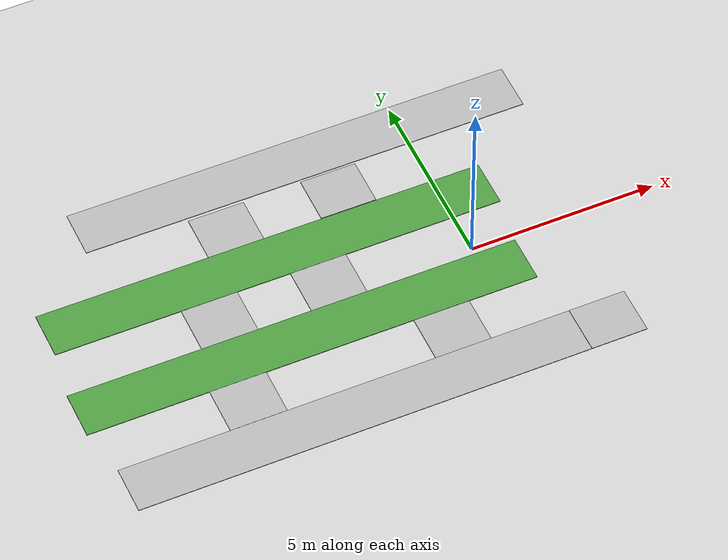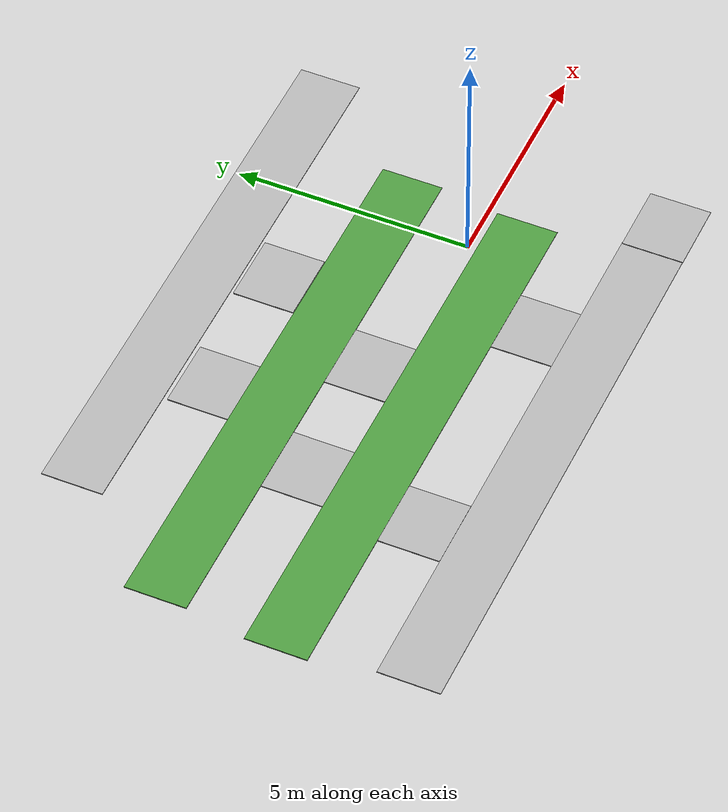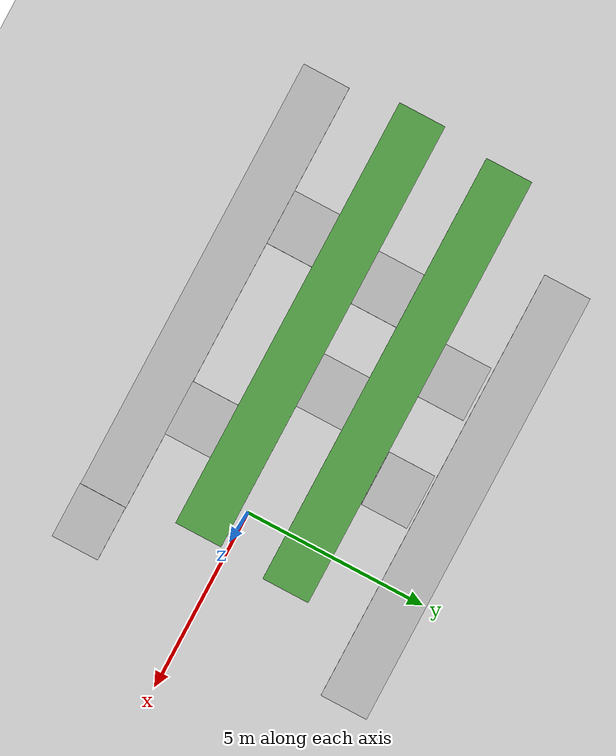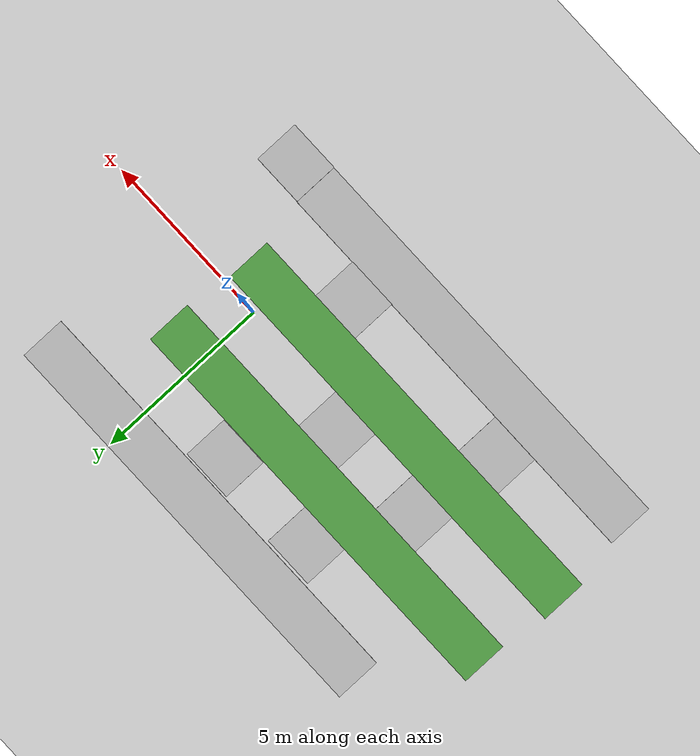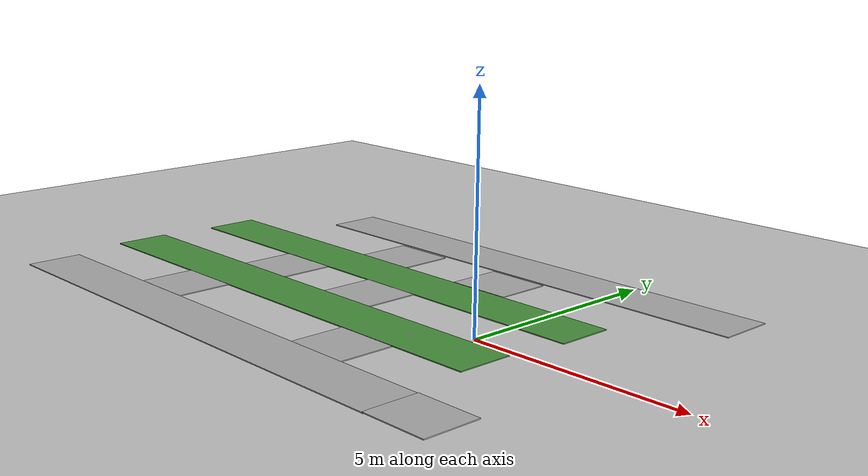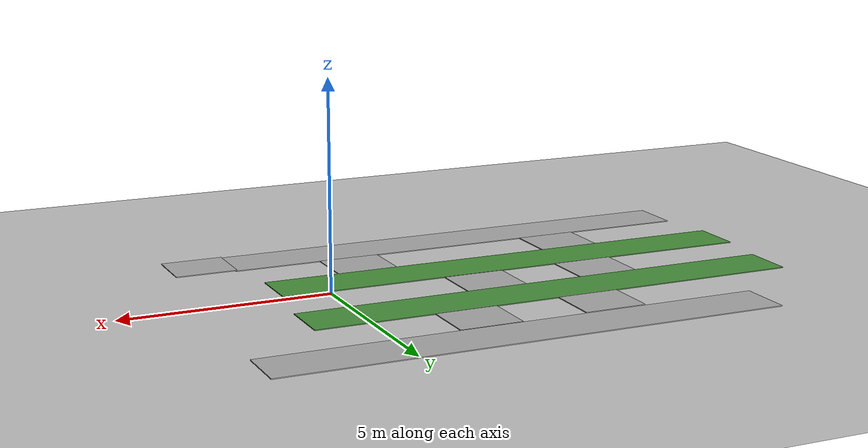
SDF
<sdf version="1.7">
 <world name="default">
  <light name="sun" type="directional">
   <pose>0 0 10 0 -0 0</pose>
   <diffuse>0.8 0.8 0.8 1</diffuse>
   <specular>0.2 0.2 0.2 1</specular>
   <attenuation>
    <range>1000</range>
    <constant>0.9</constant>
    <linear>0.01</linear>
    <quadratic>0.001</quadratic>
   </attenuation>
   <direction>-0.5 0.1 -0.9</direction>
   <spot><inner_angle>0</inner_angle><outer_angle>0</outer_angle><falloff>0</falloff></spot>
  </light>
  <model name="ground_plane">
   <static>1</static>
   <link name="link">
    <collision name="collision">
     <geometry><plane><normal>0 0 1</normal><size>100 100</size></plane></geometry>
     <surface>
      <contact><collide_bitmask>65535</collide_bitmask></contact>
      <friction><ode><mu>100</mu><mu2>50</mu2></ode></friction>
     </surface>
    </collision>
    <visual name="visual">
     <cast_shadows>0</cast_shadows>
     <geometry><plane><normal>0 0 1</normal><size>100 100</size></plane></geometry>
     <material>
      <script><uri>file://media/materials/scripts/gazebo.material</uri><name>Gazebo/Grey</name></script>
     </material>
    </visual>
   </link>
  </model>
  <gravity>0 0 -9.8</gravity>
  <magnetic_field>6e-06 2.3e-05 -4.2e-05</magnetic_field>
  <atmosphere type="adiabatic"/>
  <physics type="ode">
   <max_step_size>0.001</max_step_size>
   <real_time_factor>1</real_time_factor>
   <real_time_update_rate>1000</real_time_update_rate>
  </physics>
  <scene><ambient>0.4 0.4 0.4 1</ambient><background>0.7 0.7 0.7 1</background><shadows>1</shadows></scene>
  <spherical_coordinates>
   <surface_model>EARTH_WGS84</surface_model>
   <latitude_deg>0</latitude_deg>
   <longitude_deg>0</longitude_deg>
   <elevation>0</elevation>
   <heading_deg>0</heading_deg>
  </spherical_coordinates>
  <model name="rigid_surface">
   <link name="link">
    <inertial>
     <mass>1</mass>
     <inertia>
      <ixx>0.166667</ixx>
      <ixy>0</ixy>
      <ixz>0</ixz>
      <iyy>0.166667</iyy>
      <iyz>0</iyz>
      <izz>0.166667</izz>
     </inertia>
    </inertial>
    <visual name="visual">
     <geometry><box><size>1.5 1.3 0.02</size></box></geometry>
     <material>
      <script><name>Gazebo/CoM</name><uri>file://media/materials/scripts/gazebo.material</uri></script>
      <shader type="pixel"><normal_map>__default__</normal_map></shader>
      <ambient>0.3 0.3 0.3 1</ambient>
      <diffuse>0.7 0.7 0.7 1</diffuse>
      <specular>0.01 0.01 0.01 1</specular>
      <emissive>0 0 0 1</emissive>
     </material>
    </visual>
    <collision name="collision">
     <geometry><box><size>1.5 1.3 0.02</size></box></geometry>
     <surface>
      <friction>
       <ode><mu>1</mu><mu2>1</mu2><fdir1>0 0 0</fdir1><slip1>0</slip1><slip2>0</slip2></ode>
       <torsional>
        <coefficient>1</coefficient>
        <patch_radius>0</patch_radius>
        <surface_radius>0</surface_radius>
        <use_patch_radius>1</use_patch_radius>
        <ode><slip>0</slip></ode>
       </torsional>
      </friction>
      <bounce><restitution_coefficient>0</restitution_coefficient><threshold>1e+06</threshold></bounce>
      <contact>
       <collide_without_contact>0</collide_without_contact>
       <collide_without_contact_bitmask>1</collide_without_contact_bitmask>
       <collide_bitmask>1</collide_bitmask>
       <ode>
        <soft_cfm>0</soft_cfm>
        <soft_erp>0.2</soft_erp>
        <kp>1e+13</kp>
        <kd>1</kd>
        <max_vel>0.01</max_vel>
        <min_depth>0</min_depth>
       </ode>
       <bullet>
        <split_impulse>1</split_impulse>
        <split_impulse_penetration_threshold>-0.01</split_impulse_penetration_threshold>
        <soft_cfm>0</soft_cfm>
        <soft_erp>0.2</soft_erp>
        <kp>1e+13</kp>
        <kd>1</kd>
       </bullet>
      </contact>
     </surface>
    </collision>
   </link>
   <static>1</static>
   <pose>2.09076 -3.42533 0.016356 0 1e-05 0</pose>
  </model>
  <model name="rigid_surface_0">
   <link name="link">
    <inertial>
     <mass>1</mass>
     <inertia>
      <ixx>0.166667</ixx>
      <ixy>0</ixy>
      <ixz>0</ixz>
      <iyy>0.166667</iyy>
      <iyz>0</iyz>
      <izz>0.166667</izz>
     </inertia>
    </inertial>
    <visual name="visual">
     <geometry><box><size>1.5 1.3 0.02</size></box></geometry>
     <material>
      <script><name>Gazebo/CoM</name><uri>file://media/materials/scripts/gazebo.material</uri></script>
      <shader type="pixel"><normal_map>__default__</normal_map></shader>
      <ambient>0.3 0.3 0.3 1</ambient>
      <diffuse>0.7 0.7 0.7 1</diffuse>
      <specular>0.01 0.01 0.01 1</specular>
      <emissive>0 0 0 1</emissive>
     </material>
    </visual>
    <collision name="collision">
     <geometry><box><size>1.5 1.3 0.02</size></box></geometry>
     <surface>
      <friction>
       <ode><mu>1</mu><mu2>1</mu2><fdir1>0 0 0</fdir1><slip1>0</slip1><slip2>0</slip2></ode>
       <torsional>
        <coefficient>1</coefficient>
        <patch_radius>0</patch_radius>
        <surface_radius>0</surface_radius>
        <use_patch_radius>1</use_patch_radius>
        <ode><slip>0</slip></ode>
       </torsional>
      </friction>
      <bounce><restitution_coefficient>0</restitution_coefficient><threshold>1e+06</threshold></bounce>
      <contact>
       <collide_without_contact>0</collide_without_contact>
       <collide_without_contact_bitmask>1</collide_without_contact_bitmask>
       <collide_bitmask>1</collide_bitmask>
       <ode>
        <soft_cfm>0</soft_cfm>
        <soft_erp>0.2</soft_erp>
        <kp>1e+13</kp>
        <kd>1</kd>
        <max_vel>0.01</max_vel>
        <min_depth>0</min_depth>
       </ode>
       <bullet>
        <split_impulse>1</split_impulse>
        <split_impulse_penetration_threshold>-0.01</split_impulse_penetration_threshold>
        <soft_cfm>0</soft_cfm>
        <soft_erp>0.2</soft_erp>
        <kp>1e+13</kp>
        <kd>1</kd>
       </bullet>
      </contact>
     </surface>
    </collision>
   </link>
   <static>1</static>
   <pose>-6.95943 -2.11349 0 0 -0 0</pose>
  </model>
  <model name="rigid_surface_1">
   <link name="link">
    <inertial>
     <mass>1</mass>
     <inertia>
      <ixx>0.166667</ixx>
      <ixy>0</ixy>
      <ixz>0</ixz>
      <iyy>0.166667</iyy>
      <iyz>0</iyz>
      <izz>0.166667</izz>
     </inertia>
    </inertial>
    <visual name="visual">
     <geometry><box><size>1.5 1.3 0.02</size></box></geometry>
     <material>
      <script><name>Gazebo/CoM</name><uri>file://media/materials/scripts/gazebo.material</uri></script>
      <shader type="pixel"><normal_map>__default__</normal_map></shader>
      <ambient>0.3 0.3 0.3 1</ambient>
      <diffuse>0.7 0.7 0.7 1</diffuse>
      <specular>0.01 0.01 0.01 1</specular>
      <emissive>0 0 0 1</emissive>
     </material>
    </visual>
    <collision name="collision">
     <geometry><box><size>1.5 1.3 0.02</size></box></geometry>
     <surface>
      <friction>
       <ode><mu>1</mu><mu2>1</mu2><fdir1>0 0 0</fdir1><slip1>0</slip1><slip2>0</slip2></ode>
       <torsional>
        <coefficient>1</coefficient>
        <patch_radius>0</patch_radius>
        <surface_radius>0</surface_radius>
        <use_patch_radius>1</use_patch_radius>
        <ode><slip>0</slip></ode>
       </torsional>
      </friction>
      <bounce><restitution_coefficient>0</restitution_coefficient><threshold>1e+06</threshold></bounce>
      <contact>
       <collide_without_contact>0</collide_without_contact>
       <collide_without_contact_bitmask>1</collide_without_contact_bitmask>
       <collide_bitmask>1</collide_bitmask>
       <ode>
        <soft_cfm>0</soft_cfm>
        <soft_erp>0.2</soft_erp>
        <kp>1e+13</kp>
        <kd>1</kd>
        <max_vel>0.01</max_vel>
        <min_depth>0</min_depth>
       </ode>
       <bullet>
        <split_impulse>1</split_impulse>
        <split_impulse_penetration_threshold>-0.01</split_impulse_penetration_threshold>
        <soft_cfm>0</soft_cfm>
        <soft_erp>0.2</soft_erp>
        <kp>1e+13</kp>
        <kd>1</kd>
       </bullet>
      </contact>
     </surface>
    </collision>
   </link>
   <static>1</static>
   <pose>-1.51533 -2.12704 0 0 -0 0</pose>
  </model>
  <model name="rigid_surface_2">
   <link name="link">
    <inertial>
     <mass>1</mass>
     <inertia>
      <ixx>0.166667</ixx>
      <ixy>0</ixy>
      <ixz>0</ixz>
      <iyy>0.166667</iyy>
      <iyz>0</iyz>
      <izz>0.166667</izz>
     </inertia>
    </inertial>
    <visual name="visual">
     <geometry><box><size>1.5 1.3 0.02</size></box></geometry>
     <material>
      <script><name>Gazebo/CoM</name><uri>file://media/materials/scripts/gazebo.material</uri></script>
      <shader type="pixel"><normal_map>__default__</normal_map></shader>
      <ambient>0.3 0.3 0.3 1</ambient>
      <diffuse>0.7 0.7 0.7 1</diffuse>
      <specular>0.01 0.01 0.01 1</specular>
      <emissive>0 0 0 1</emissive>
     </material>
    </visual>
    <collision name="collision">
     <geometry><box><size>1.5 1.3 0.02</size></box></geometry>
     <surface>
      <friction>
       <ode><mu>1</mu><mu2>1</mu2><fdir1>0 0 0</fdir1><slip1>0</slip1><slip2>0</slip2></ode>
       <torsional>
        <coefficient>1</coefficient>
        <patch_radius>0</patch_radius>
        <surface_radius>0</surface_radius>
        <use_patch_radius>1</use_patch_radius>
        <ode><slip>0</slip></ode>
       </torsional>
      </friction>
      <bounce><restitution_coefficient>0</restitution_coefficient><threshold>1e+06</threshold></bounce>
      <contact>
       <collide_without_contact>0</collide_without_contact>
       <collide_without_contact_bitmask>1</collide_without_contact_bitmask>
       <collide_bitmask>1</collide_bitmask>
       <ode>
        <soft_cfm>0</soft_cfm>
        <soft_erp>0.2</soft_erp>
        <kp>1e+13</kp>
        <kd>1</kd>
        <max_vel>0.01</max_vel>
        <min_depth>0</min_depth>
       </ode>
       <bullet>
        <split_impulse>1</split_impulse>
        <split_impulse_penetration_threshold>-0.01</split_impulse_penetration_threshold>
        <soft_cfm>0</soft_cfm>
        <soft_erp>0.2</soft_erp>
        <kp>1e+13</kp>
        <kd>1</kd>
       </bullet>
      </contact>
     </surface>
    </collision>
   </link>
   <static>1</static>
   <pose>-3.68471 0.469303 0 0 -0 0</pose>
  </model>
  <model name="rigid_surface_3">
   <link name="link">
    <inertial>
     <mass>1</mass>
     <inertia>
      <ixx>0.166667</ixx>
      <ixy>0</ixy>
      <ixz>0</ixz>
      <iyy>0.166667</iyy>
      <iyz>0</iyz>
      <izz>0.166667</izz>
     </inertia>
    </inertial>
    <visual name="visual">
     <geometry><box><size>1.5 1.3 0.02</size></box></geometry>
     <material>
      <script><name>Gazebo/CoM</name><uri>file://media/materials/scripts/gazebo.material</uri></script>
      <shader type="pixel"><normal_map>__default__</normal_map></shader>
      <ambient>0.3 0.3 0.3 1</ambient>
      <diffuse>0.7 0.7 0.7 1</diffuse>
      <specular>0.01 0.01 0.01 1</specular>
      <emissive>0 0 0 1</emissive>
     </material>
    </visual>
    <collision name="collision">
     <geometry><box><size>1.5 1.3 0.02</size></box></geometry>
     <surface>
      <friction>
       <ode><mu>1</mu><mu2>1</mu2><fdir1>0 0 0</fdir1><slip1>0</slip1><slip2>0</slip2></ode>
       <torsional>
        <coefficient>1</coefficient>
        <patch_radius>0</patch_radius>
        <surface_radius>0</surface_radius>
        <use_patch_radius>1</use_patch_radius>
        <ode><slip>0</slip></ode>
       </torsional>
      </friction>
      <bounce><restitution_coefficient>0</restitution_coefficient><threshold>1e+06</threshold></bounce>
      <contact>
       <collide_without_contact>0</collide_without_contact>
       <collide_without_contact_bitmask>1</collide_without_contact_bitmask>
       <collide_bitmask>1</collide_bitmask>
       <ode>
        <soft_cfm>0</soft_cfm>
        <soft_erp>0.2</soft_erp>
        <kp>1e+13</kp>
        <kd>1</kd>
        <max_vel>0.01</max_vel>
        <min_depth>0</min_depth>
       </ode>
       <bullet>
        <split_impulse>1</split_impulse>
        <split_impulse_penetration_threshold>-0.01</split_impulse_penetration_threshold>
        <soft_cfm>0</soft_cfm>
        <soft_erp>0.2</soft_erp>
        <kp>1e+13</kp>
        <kd>1</kd>
       </bullet>
      </contact>
     </surface>
    </collision>
   </link>
   <static>1</static>
   <pose>-6.61521 0.463482 0 0 -0 0</pose>
  </model>
  <model name="rigid_surface_4">
   <link name="link">
    <inertial>
     <mass>1</mass>
     <inertia>
      <ixx>0.166667</ixx>
      <ixy>0</ixy>
      <ixz>0</ixz>
      <iyy>0.166667</iyy>
      <iyz>0</iyz>
      <izz>0.166667</izz>
     </inertia>
    </inertial>
    <visual name="visual">
     <geometry><box><size>1.5 1.3 0.02</size></box></geometry>
     <material>
      <script><name>Gazebo/CoM</name><uri>file://media/materials/scripts/gazebo.material</uri></script>
      <shader type="pixel"><normal_map>__default__</normal_map></shader>
      <ambient>0.3 0.3 0.3 1</ambient>
      <diffuse>0.7 0.7 0.7 1</diffuse>
      <specular>0.01 0.01 0.01 1</specular>
      <emissive>0 0 0 1</emissive>
     </material>
    </visual>
    <collision name="collision">
     <geometry><box><size>1.5 1.3 0.02</size></box></geometry>
     <surface>
      <friction>
       <ode><mu>1</mu><mu2>1</mu2><fdir1>0 0 0</fdir1><slip1>0</slip1><slip2>0</slip2></ode>
       <torsional>
        <coefficient>1</coefficient>
        <patch_radius>0</patch_radius>
        <surface_radius>0</surface_radius>
        <use_patch_radius>1</use_patch_radius>
        <ode><slip>0</slip></ode>
       </torsional>
      </friction>
      <bounce><restitution_coefficient>0</restitution_coefficient><threshold>1e+06</threshold></bounce>
      <contact>
       <collide_without_contact>0</collide_without_contact>
       <collide_without_contact_bitmask>1</collide_without_contact_bitmask>
       <collide_bitmask>1</collide_bitmask>
       <ode>
        <soft_cfm>0</soft_cfm>
        <soft_erp>0.2</soft_erp>
        <kp>1e+13</kp>
        <kd>1</kd>
        <max_vel>0.01</max_vel>
        <min_depth>0</min_depth>
       </ode>
       <bullet>
        <split_impulse>1</split_impulse>
        <split_impulse_penetration_threshold>-0.01</split_impulse_penetration_threshold>
        <soft_cfm>0</soft_cfm>
        <soft_erp>0.2</soft_erp>
        <kp>1e+13</kp>
        <kd>1</kd>
       </bullet>
      </contact>
     </surface>
    </collision>
   </link>
   <static>1</static>
   <pose>-5.33596 3.05973 0 0 -0 0</pose>
  </model>
  <model name="rigid_surface_5">
   <link name="link">
    <inertial>
     <mass>1</mass>
     <inertia>
      <ixx>0.166667</ixx>
      <ixy>0</ixy>
      <ixz>0</ixz>
      <iyy>0.166667</iyy>
      <iyz>0</iyz>
      <izz>0.166667</izz>
     </inertia>
    </inertial>
    <visual name="visual">
     <geometry><box><size>1.5 1.3 0.02</size></box></geometry>
     <material>
      <script><name>Gazebo/CoM</name><uri>file://media/materials/scripts/gazebo.material</uri></script>
      <shader type="pixel"><normal_map>__default__</normal_map></shader>
      <ambient>0.3 0.3 0.3 1</ambient>
      <diffuse>0.7 0.7 0.7 1</diffuse>
      <specular>0.01 0.01 0.01 1</specular>
      <emissive>0 0 0 1</emissive>
     </material>
    </visual>
    <collision name="collision">
     <geometry><box><size>1.5 1.3 0.02</size></box></geometry>
     <surface>
      <friction>
       <ode><mu>1</mu><mu2>1</mu2><fdir1>0 0 0</fdir1><slip1>0</slip1><slip2>0</slip2></ode>
       <torsional>
        <coefficient>1</coefficient>
        <patch_radius>0</patch_radius>
        <surface_radius>0</surface_radius>
        <use_patch_radius>1</use_patch_radius>
        <ode><slip>0</slip></ode>
       </torsional>
      </friction>
      <bounce><restitution_coefficient>0</restitution_coefficient><threshold>1e+06</threshold></bounce>
      <contact>
       <collide_without_contact>0</collide_without_contact>
       <collide_without_contact_bitmask>1</collide_without_contact_bitmask>
       <collide_bitmask>1</collide_bitmask>
       <ode>
        <soft_cfm>0</soft_cfm>
        <soft_erp>0.2</soft_erp>
        <kp>1e+13</kp>
        <kd>1</kd>
        <max_vel>0.01</max_vel>
        <min_depth>0</min_depth>
       </ode>
       <bullet>
        <split_impulse>1</split_impulse>
        <split_impulse_penetration_threshold>-0.01</split_impulse_penetration_threshold>
        <soft_cfm>0</soft_cfm>
        <soft_erp>0.2</soft_erp>
        <kp>1e+13</kp>
        <kd>1</kd>
       </bullet>
      </contact>
     </surface>
    </collision>
   </link>
   <static>1</static>
   <pose>-2.26883 3.08034 0 0 -0 0</pose>
  </model>
  <model name="testConcrete">
   <link name="link_0">
    <inertial>
     <mass>1</mass>
     <inertia>
      <ixx>0.166667</ixx>
      <ixy>0</ixy>
      <ixz>0</ixz>
      <iyy>0.166667</iyy>
      <iyz>0</iyz>
      <izz>0.166667</izz>
     </inertia>
    </inertial>
    <visual name="visual">
     <geometry><box><size>12 1.3 0.02</size></box></geometry>
     <material>
      <lighting>1</lighting>
      <script><uri>file://media/materials/scripts/gazebo.material</uri><name>Gazebo/Motorway</name></script>
      <shader type="pixel"><normal_map>__default__</normal_map></shader>
      <ambient>0.3 0.3 0.3 1</ambient>
      <diffuse>0.7 0.7 0.7 1</diffuse>
      <specular>0.01 0.01 0.01 1</specular>
      <emissive>0 0 0 1</emissive>
     </material>
    </visual>
    <collision name="collision">
     <geometry><box><size>12 1.3 0.02</size></box></geometry>
     <surface>
      <friction>
       <ode><mu>1</mu><mu2>1</mu2><fdir1>0 0 0</fdir1><slip1>0</slip1><slip2>0</slip2></ode>
       <torsional>
        <coefficient>1</coefficient>
        <patch_radius>0</patch_radius>
        <surface_radius>0</surface_radius>
        <use_patch_radius>1</use_patch_radius>
        <ode><slip>0</slip></ode>
       </torsional>
      </friction>
      <bounce><restitution_coefficient>0</restitution_coefficient><threshold>1e+06</threshold></bounce>
      <contact>
       <collide_without_contact>0</collide_without_contact>
       <collide_without_contact_bitmask>1</collide_without_contact_bitmask>
       <collide_bitmask>1</collide_bitmask>
       <ode>
        <soft_cfm>0</soft_cfm>
        <soft_erp>0.2</soft_erp>
        <kp>3.4e+09</kp>
        <kd>180000</kd>
        <max_vel>0.01</max_vel>
        <min_depth>0</min_depth>
       </ode>
       <bullet>
        <split_impulse>1</split_impulse>
        <split_impulse_penetration_threshold>-0.01</split_impulse_penetration_threshold>
        <soft_cfm>0</soft_cfm>
        <soft_erp>0.2</soft_erp>
        <kp>3.4e+09</kp>
        <kd>180000</kd>
       </bullet>
      </contact>
     </surface>
    </collision>
   </link>
   <static>1</static>
   <pose>-2.79488 4.4395 0.009994 2.2e-05 0 1.2e-05</pose>
  </model>
  <model name="sandTerrain">
   <link name="link_0">
    <inertial>
     <mass>1</mass>
     <inertia>
      <ixx>0.166667</ixx>
      <ixy>0</ixy>
      <ixz>0</ixz>
      <iyy>0.166667</iyy>
      <iyz>0</iyz>
      <izz>0.166667</izz>
     </inertia>
    </inertial>
    <visual name="visual">
     <geometry><box><size>12 1.3 0.02</size></box></geometry>
     <material>
      <lighting>1</lighting>
      <script><uri>file://media/materials/scripts/gazebo.material</uri><name>Gazebo/Grass</name></script>
      <shader type="pixel"><normal_map>__default__</normal_map></shader>
      <ambient>0.3 0.3 0.3 1</ambient>
      <diffuse>0.7 0.7 0.7 1</diffuse>
      <specular>0.01 0.01 0.01 1</specular>
      <emissive>0 0 0 1</emissive>
     </material>
    </visual>
    <collision name="collision">
     <geometry><box><size>12 1.3 0.02</size></box></geometry>
     <surface>
      <friction>
       <ode><mu>1</mu><mu2>1</mu2><fdir1>0 0 0</fdir1><slip1>0</slip1><slip2>0</slip2></ode>
       <torsional>
        <coefficient>1</coefficient>
        <patch_radius>0</patch_radius>
        <surface_radius>0</surface_radius>
        <use_patch_radius>1</use_patch_radius>
        <ode><slip>0</slip></ode>
       </torsional>
      </friction>
      <bounce><restitution_coefficient>0</restitution_coefficient><threshold>1e+06</threshold></bounce>
      <contact>
       <collide_without_contact>0</collide_without_contact>
       <collide_without_contact_bitmask>1</collide_without_contact_bitmask>
       <collide_bitmask>1</collide_bitmask>
       <ode>
        <soft_cfm>0</soft_cfm>
        <soft_erp>0.2</soft_erp>
        <kp>9.1e+06</kp>
        <kd>9000</kd>
        <max_vel>0.01</max_vel>
        <min_depth>0</min_depth>
       </ode>
       <bullet>
        <split_impulse>1</split_impulse>
        <split_impulse_penetration_threshold>-0.01</split_impulse_penetration_threshold>
        <soft_cfm>0</soft_cfm>
        <soft_erp>0.2</soft_erp>
        <kp>9.1e+06</kp>
        <kd>9000</kd>
       </bullet>
      </contact>
     </surface>
    </collision>
   </link>
   <static>1</static>
   <pose>-4.91009 -0.830343 0.004479 -0.00047 -0.000966 -0.000678</pose>
  </model>
  <model name="sandTerrain_0">
   <link name="link_0">
    <inertial>
     <mass>1</mass>
     <inertia>
      <ixx>0.166667</ixx>
      <ixy>0</ixy>
      <ixz>0</ixz>
      <iyy>0.166667</iyy>
      <iyz>0</iyz>
      <izz>0.166667</izz>
     </inertia>
    </inertial>
    <visual name="visual">
     <geometry><box><size>12 1.3 0.02</size></box></geometry>
     <material>
      <lighting>1</lighting>
      <script><uri>file://media/materials/scripts/gazebo.material</uri><name>Gazebo/Grass</name></script>
      <shader type="pixel"><normal_map>__default__</normal_map></shader>
      <ambient>0.3 0.3 0.3 1</ambient>
      <diffuse>0.7 0.7 0.7 1</diffuse>
      <specular>0.01 0.01 0.01 1</specular>
      <emissive>0 0 0 1</emissive>
     </material>
    </visual>
    <collision name="collision">
     <geometry><box><size>12 1.3 0.02</size></box></geometry>
     <surface>
      <friction>
       <ode><mu>1</mu><mu2>1</mu2><fdir1>0 0 0</fdir1><slip1>0</slip1><slip2>0</slip2></ode>
       <torsional>
        <coefficient>1</coefficient>
        <patch_radius>0</patch_radius>
        <surface_radius>0</surface_radius>
        <use_patch_radius>1</use_patch_radius>
        <ode><slip>0</slip></ode>
       </torsional>
      </friction>
      <bounce><restitution_coefficient>0</restitution_coefficient><threshold>1e+06</threshold></bounce>
      <contact>
       <collide_without_contact>0</collide_without_contact>
       <collide_without_contact_bitmask>1</collide_without_contact_bitmask>
       <collide_bitmask>1</collide_bitmask>
       <ode>
        <soft_cfm>0</soft_cfm>
        <soft_erp>0.2</soft_erp>
        <kp>9.1e+06</kp>
        <kd>9000</kd>
        <max_vel>0.01</max_vel>
        <min_depth>0</min_depth>
       </ode>
       <bullet>
        <split_impulse>1</split_impulse>
        <split_impulse_penetration_threshold>-0.01</split_impulse_penetration_threshold>
        <soft_cfm>0</soft_cfm>
        <soft_erp>0.2</soft_erp>
        <kp>9.1e+06</kp>
        <kd>9000</kd>
       </bullet>
      </contact>
     </surface>
    </collision>
   </link>
   <static>1</static>
   <pose>-4.69792 1.76471 0.002092 -0.002438 0.00134 0.000114</pose>
  </model>
  <model name="gravelTerrain">
   <link name="link_0">
    <inertial>
     <mass>1</mass>
     <inertia>
      <ixx>0.166667</ixx>
      <ixy>0</ixy>
      <ixz>0</ixz>
      <iyy>0.166667</iyy>
      <iyz>0</iyz>
      <izz>0.166667</izz>
     </inertia>
    </inertial>
    <visual name="visual">
     <geometry><box><size>12 1.3 0.02</size></box></geometry>
     <material>
      <lighting>1</lighting>
      <script><uri>file://media/materials/scripts/gazebo.material</uri><name>Gazebo/Footway</name></script>
      <shader type="pixel"><normal_map>__default__</normal_map></shader>
      <ambient>0.3 0.3 0.3 1</ambient>
      <diffuse>0.7 0.7 0.7 1</diffuse>
      <specular>0.01 0.01 0.01 1</specular>
      <emissive>0 0 0 1</emissive>
     </material>
    </visual>
    <collision name="collision">
     <geometry><box><size>12 1.3 0.02</size></box></geometry>
     <surface>
      <friction>
       <ode><mu>1</mu><mu2>1</mu2><fdir1>0 0 0</fdir1><slip1>0</slip1><slip2>0</slip2></ode>
       <torsional>
        <coefficient>1</coefficient>
        <patch_radius>0</patch_radius>
        <surface_radius>0</surface_radius>
        <use_patch_radius>1</use_patch_radius>
        <ode><slip>0</slip></ode>
       </torsional>
      </friction>
      <bounce><restitution_coefficient>0</restitution_coefficient><threshold>1e+06</threshold></bounce>
      <contact>
       <collide_without_contact>0</collide_without_contact>
       <collide_without_contact_bitmask>1</collide_without_contact_bitmask>
       <collide_bitmask>1</collide_bitmask>
       <ode>
        <soft_cfm>0.5</soft_cfm>
        <soft_erp>0.2</soft_erp>
        <kp>2.3e+07</kp>
        <kd>14000</kd>
        <max_vel>0.01</max_vel>
        <min_depth>0</min_depth>
       </ode>
       <bullet>
        <split_impulse>1</split_impulse>
        <split_impulse_penetration_threshold>-0.01</split_impulse_penetration_threshold>
        <soft_cfm>0.5</soft_cfm>
        <soft_erp>0.2</soft_erp>
        <kp>2.3e+07</kp>
        <kd>14000</kd>
       </bullet>
      </contact>
     </surface>
    </collision>
   </link>
   <static>1</static>
   <pose>-4.63537 -3.41536 0 0 -0 0</pose>
  </model>
 </world>
</sdf>
